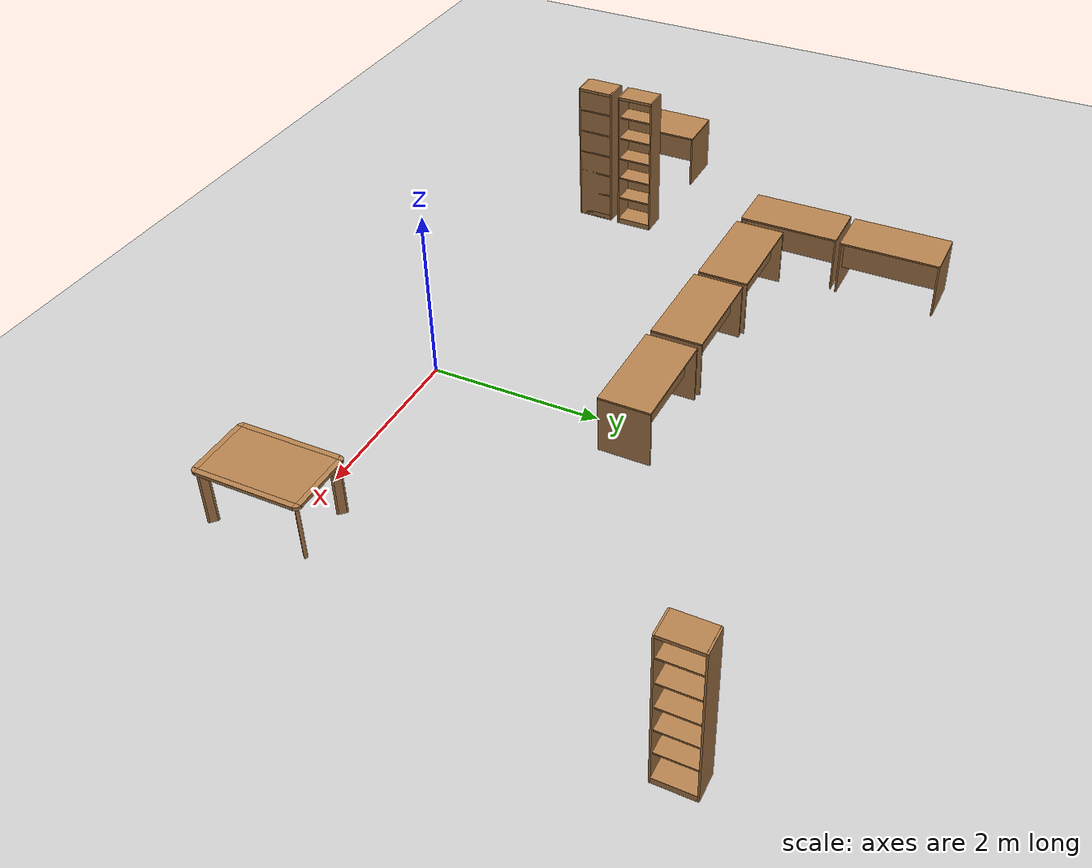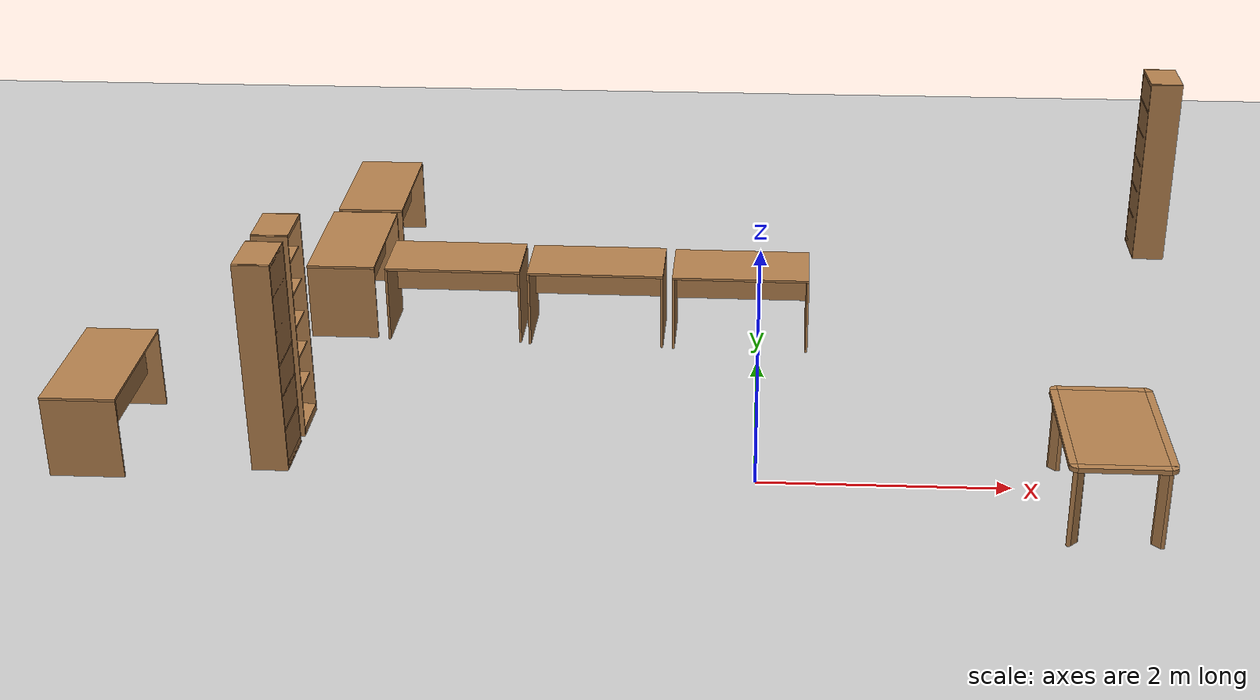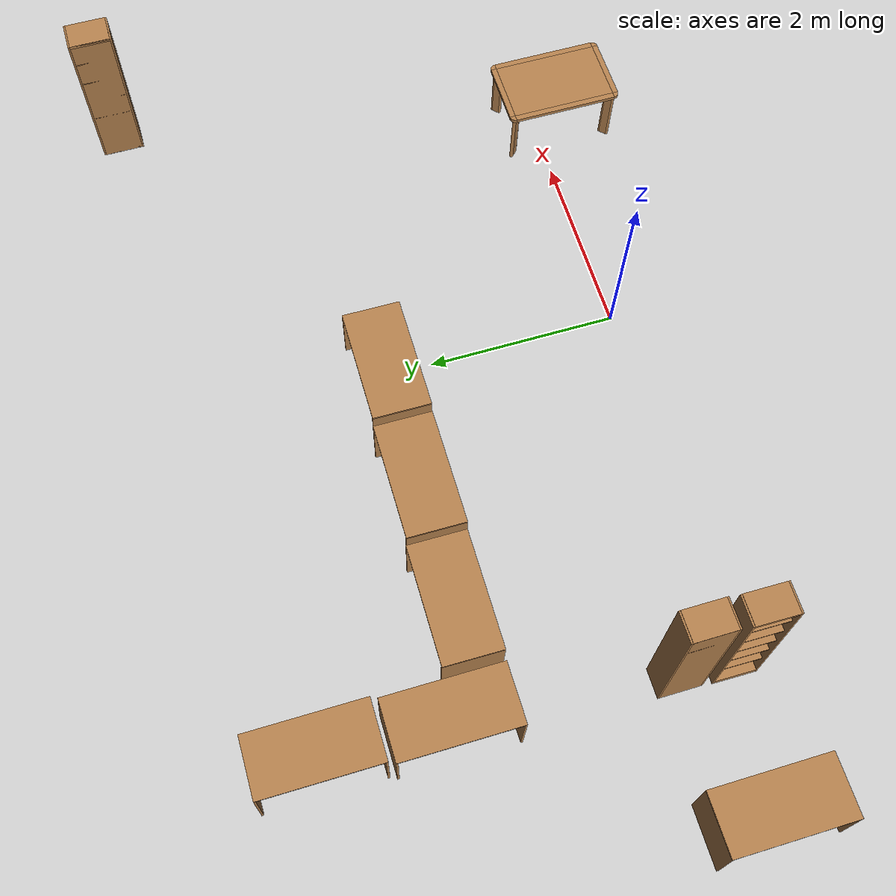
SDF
<sdf version="1.7">
 <world name="default">
  <model name="ground_plane">
   <static>1</static>
   <link name="link">
    <collision name="collision">
     <geometry><plane><normal>0 0 1</normal><size>100 100</size></plane></geometry>
     <surface><friction><ode><mu>100</mu><mu2>50</mu2></ode></friction></surface>
    </collision>
    <visual name="visual">
     <cast_shadows>0</cast_shadows>
     <geometry><plane><normal>0 0 1</normal><size>100 100</size></plane></geometry>
     <material>
      <script><uri>file://media/materials/scripts/gazebo.material</uri><name>Gazebo/Grey</name></script>
     </material>
    </visual>
   </link>
  </model>
  <model name="office_desk">
   <link name="link">
    <inertial>
     <mass>10</mass>
     <inertia><ixx>1</ixx><ixy>0</ixy><ixz>0</ixz><iyy>1</iyy><iyz>0</iyz><izz>1</izz></inertia>
    </inertial>
    <visual name="top_board">
     <pose>-0.3 0.6 0.69 0 -0 0</pose>
     <geometry><box><size>0.6 1.2 0.02</size></box></geometry>
     <material>
      <script>
       <uri>model://base_materials/wood/scripts/wood.material</uri>
       <name>base_materials/dark_wood</name>
      </script>
     </material>
    </visual>
    <collision name="collision_top_board">
     <pose>-0.3 0.6 0.69 0 -0 0</pose>
     <geometry><box><size>0.6 1.2 0.02</size></box></geometry>
    </collision>
    <visual name="left_board">
     <pose>-0.3 0.01 0.34 0 -0 0</pose>
     <geometry><box><size>0.6 0.02 0.68</size></box></geometry>
     <material>
      <script>
       <uri>model://base_materials/wood/scripts/wood.material</uri>
       <name>base_materials/dark_wood</name>
      </script>
     </material>
    </visual>
    <collision name="collision_left_board">
     <pose>-0.3 0.01 0.34 0 -0 0</pose>
     <geometry><box><size>0.6 0.02 0.68</size></box></geometry>
    </collision>
    <visual name="right_board">
     <pose>-0.3 1.19 0.34 0 -0 0</pose>
     <geometry><box><size>0.6 0.02 0.68</size></box></geometry>
     <material>
      <script>
       <uri>model://base_materials/wood/scripts/wood.material</uri>
       <name>base_materials/dark_wood</name>
      </script>
     </material>
    </visual>
    <collision name="collision_right_board">
     <pose>-0.3 1.19 0.34 0 -0 0</pose>
     <geometry><box><size>0.6 0.02 0.68</size></box></geometry>
    </collision>
    <visual name="center_board">
     <pose>-0.14 0.6 0.49 0 -0 0</pose>
     <geometry><box><size>0.02 1.16 0.4</size></box></geometry>
     <material>
      <script>
       <uri>model://base_materials/wood/scripts/wood.material</uri>
       <name>base_materials/dark_wood</name>
      </script>
     </material>
    </visual>
    <collision name="ollision_center_board">
     <pose>-0.14 0.6 0.49 0 -0 0</pose>
     <geometry><box><size>0.02 1.16 0.4</size></box></geometry>
    </collision>
    <velocity_decay><linear>0</linear><angular>0</angular></velocity_decay>
   </link>
   <static>1</static>
   <pose>-3.41065 2.31343 0 0 -0 0</pose>
  </model>
  <model name="office_desk_clone">
   <link name="link">
    <inertial>
     <mass>10</mass>
     <inertia><ixx>1</ixx><ixy>0</ixy><ixz>0</ixz><iyy>1</iyy><iyz>0</iyz><izz>1</izz></inertia>
    </inertial>
    <visual name="top_board">
     <pose>-0.3 0.6 0.69 0 -0 0</pose>
     <geometry><box><size>0.6 1.2 0.02</size></box></geometry>
     <material>
      <script>
       <uri>model://base_materials/wood/scripts/wood.material</uri>
       <name>base_materials/dark_wood</name>
      </script>
     </material>
    </visual>
    <collision name="collision_top_board">
     <pose>-0.3 0.6 0.69 0 -0 0</pose>
     <geometry><box><size>0.6 1.2 0.02</size></box></geometry>
    </collision>
    <visual name="left_board">
     <pose>-0.3 0.01 0.34 0 -0 0</pose>
     <geometry><box><size>0.6 0.02 0.68</size></box></geometry>
     <material>
      <script>
       <uri>model://base_materials/wood/scripts/wood.material</uri>
       <name>base_materials/dark_wood</name>
      </script>
     </material>
    </visual>
    <collision name="collision_left_board">
     <pose>-0.3 0.01 0.34 0 -0 0</pose>
     <geometry><box><size>0.6 0.02 0.68</size></box></geometry>
    </collision>
    <visual name="right_board">
     <pose>-0.3 1.19 0.34 0 -0 0</pose>
     <geometry><box><size>0.6 0.02 0.68</size></box></geometry>
     <material>
      <script>
       <uri>model://base_materials/wood/scripts/wood.material</uri>
       <name>base_materials/dark_wood</name>
      </script>
     </material>
    </visual>
    <collision name="collision_right_board">
     <pose>-0.3 1.19 0.34 0 -0 0</pose>
     <geometry><box><size>0.6 0.02 0.68</size></box></geometry>
    </collision>
    <visual name="center_board">
     <pose>-0.14 0.6 0.49 0 -0 0</pose>
     <geometry><box><size>0.02 1.16 0.4</size></box></geometry>
     <material>
      <script>
       <uri>model://base_materials/wood/scripts/wood.material</uri>
       <name>base_materials/dark_wood</name>
      </script>
     </material>
    </visual>
    <collision name="ollision_center_board">
     <pose>-0.14 0.6 0.49 0 -0 0</pose>
     <geometry><box><size>0.02 1.16 0.4</size></box></geometry>
    </collision>
    <velocity_decay><linear>0</linear><angular>0</angular></velocity_decay>
   </link>
   <static>1</static>
   <pose>-2.1081 2.88009 0 0 -0 1.56306</pose>
  </model>
  <model name="office_desk_clone_clone">
   <link name="link">
    <inertial>
     <mass>10</mass>
     <inertia><ixx>1</ixx><ixy>0</ixy><ixz>0</ixz><iyy>1</iyy><iyz>0</iyz><izz>1</izz></inertia>
    </inertial>
    <visual name="top_board">
     <pose>-0.3 0.6 0.69 0 -0 0</pose>
     <geometry><box><size>0.6 1.2 0.02</size></box></geometry>
     <material>
      <script>
       <uri>model://base_materials/wood/scripts/wood.material</uri>
       <name>base_materials/dark_wood</name>
      </script>
     </material>
    </visual>
    <collision name="collision_top_board">
     <pose>-0.3 0.6 0.69 0 -0 0</pose>
     <geometry><box><size>0.6 1.2 0.02</size></box></geometry>
    </collision>
    <visual name="left_board">
     <pose>-0.3 0.01 0.34 0 -0 0</pose>
     <geometry><box><size>0.6 0.02 0.68</size></box></geometry>
     <material>
      <script>
       <uri>model://base_materials/wood/scripts/wood.material</uri>
       <name>base_materials/dark_wood</name>
      </script>
     </material>
    </visual>
    <collision name="collision_left_board">
     <pose>-0.3 0.01 0.34 0 -0 0</pose>
     <geometry><box><size>0.6 0.02 0.68</size></box></geometry>
    </collision>
    <visual name="right_board">
     <pose>-0.3 1.19 0.34 0 -0 0</pose>
     <geometry><box><size>0.6 0.02 0.68</size></box></geometry>
     <material>
      <script>
       <uri>model://base_materials/wood/scripts/wood.material</uri>
       <name>base_materials/dark_wood</name>
      </script>
     </material>
    </visual>
    <collision name="collision_right_board">
     <pose>-0.3 1.19 0.34 0 -0 0</pose>
     <geometry><box><size>0.6 0.02 0.68</size></box></geometry>
    </collision>
    <visual name="center_board">
     <pose>-0.14 0.6 0.49 0 -0 0</pose>
     <geometry><box><size>0.02 1.16 0.4</size></box></geometry>
     <material>
      <script>
       <uri>model://base_materials/wood/scripts/wood.material</uri>
       <name>base_materials/dark_wood</name>
      </script>
     </material>
    </visual>
    <collision name="ollision_center_board">
     <pose>-0.14 0.6 0.49 0 -0 0</pose>
     <geometry><box><size>0.02 1.16 0.4</size></box></geometry>
    </collision>
    <velocity_decay><linear>0</linear><angular>0</angular></velocity_decay>
   </link>
   <static>1</static>
   <pose>-3.37655 3.57266 0 0 -0 0</pose>
  </model>
  <model name="office_desk_clone_clone_0">
   <link name="link">
    <inertial>
     <mass>10</mass>
     <inertia><ixx>1</ixx><ixy>0</ixy><ixz>0</ixz><iyy>1</iyy><iyz>0</iyz><izz>1</izz></inertia>
    </inertial>
    <visual name="top_board">
     <pose>-0.3 0.6 0.69 0 -0 0</pose>
     <geometry><box><size>0.6 1.2 0.02</size></box></geometry>
     <material>
      <script>
       <uri>model://base_materials/wood/scripts/wood.material</uri>
       <name>base_materials/dark_wood</name>
      </script>
     </material>
    </visual>
    <collision name="collision_top_board">
     <pose>-0.3 0.6 0.69 0 -0 0</pose>
     <geometry><box><size>0.6 1.2 0.02</size></box></geometry>
    </collision>
    <visual name="left_board">
     <pose>-0.3 0.01 0.34 0 -0 0</pose>
     <geometry><box><size>0.6 0.02 0.68</size></box></geometry>
     <material>
      <script>
       <uri>model://base_materials/wood/scripts/wood.material</uri>
       <name>base_materials/dark_wood</name>
      </script>
     </material>
    </visual>
    <collision name="collision_left_board">
     <pose>-0.3 0.01 0.34 0 -0 0</pose>
     <geometry><box><size>0.6 0.02 0.68</size></box></geometry>
    </collision>
    <visual name="right_board">
     <pose>-0.3 1.19 0.34 0 -0 0</pose>
     <geometry><box><size>0.6 0.02 0.68</size></box></geometry>
     <material>
      <script>
       <uri>model://base_materials/wood/scripts/wood.material</uri>
       <name>base_materials/dark_wood</name>
      </script>
     </material>
    </visual>
    <collision name="collision_right_board">
     <pose>-0.3 1.19 0.34 0 -0 0</pose>
     <geometry><box><size>0.6 0.02 0.68</size></box></geometry>
    </collision>
    <visual name="center_board">
     <pose>-0.14 0.6 0.49 0 -0 0</pose>
     <geometry><box><size>0.02 1.16 0.4</size></box></geometry>
     <material>
      <script>
       <uri>model://base_materials/wood/scripts/wood.material</uri>
       <name>base_materials/dark_wood</name>
      </script>
     </material>
    </visual>
    <collision name="ollision_center_board">
     <pose>-0.14 0.6 0.49 0 -0 0</pose>
     <geometry><box><size>0.02 1.16 0.4</size></box></geometry>
    </collision>
    <velocity_decay><linear>0</linear><angular>0</angular></velocity_decay>
   </link>
   <static>1</static>
   <pose>-0.839795 2.84629 0 0 -0 1.56306</pose>
  </model>
  <model name="office_desk_clone_clone_1">
   <link name="link">
    <inertial>
     <mass>10</mass>
     <inertia><ixx>1</ixx><ixy>0</ixy><ixz>0</ixz><iyy>1</iyy><iyz>0</iyz><izz>1</izz></inertia>
    </inertial>
    <visual name="top_board">
     <pose>-0.3 0.6 0.69 0 -0 0</pose>
     <geometry><box><size>0.6 1.2 0.02</size></box></geometry>
     <material>
      <script>
       <uri>model://base_materials/wood/scripts/wood.material</uri>
       <name>base_materials/dark_wood</name>
      </script>
     </material>
    </visual>
    <collision name="collision_top_board">
     <pose>-0.3 0.6 0.69 0 -0 0</pose>
     <geometry><box><size>0.6 1.2 0.02</size></box></geometry>
    </collision>
    <visual name="left_board">
     <pose>-0.3 0.01 0.34 0 -0 0</pose>
     <geometry><box><size>0.6 0.02 0.68</size></box></geometry>
     <material>
      <script>
       <uri>model://base_materials/wood/scripts/wood.material</uri>
       <name>base_materials/dark_wood</name>
      </script>
     </material>
    </visual>
    <collision name="collision_left_board">
     <pose>-0.3 0.01 0.34 0 -0 0</pose>
     <geometry><box><size>0.6 0.02 0.68</size></box></geometry>
    </collision>
    <visual name="right_board">
     <pose>-0.3 1.19 0.34 0 -0 0</pose>
     <geometry><box><size>0.6 0.02 0.68</size></box></geometry>
     <material>
      <script>
       <uri>model://base_materials/wood/scripts/wood.material</uri>
       <name>base_materials/dark_wood</name>
      </script>
     </material>
    </visual>
    <collision name="collision_right_board">
     <pose>-0.3 1.19 0.34 0 -0 0</pose>
     <geometry><box><size>0.6 0.02 0.68</size></box></geometry>
    </collision>
    <visual name="center_board">
     <pose>-0.14 0.6 0.49 0 -0 0</pose>
     <geometry><box><size>0.02 1.16 0.4</size></box></geometry>
     <material>
      <script>
       <uri>model://base_materials/wood/scripts/wood.material</uri>
       <name>base_materials/dark_wood</name>
      </script>
     </material>
    </visual>
    <collision name="ollision_center_board">
     <pose>-0.14 0.6 0.49 0 -0 0</pose>
     <geometry><box><size>0.02 1.16 0.4</size></box></geometry>
    </collision>
    <velocity_decay><linear>0</linear><angular>0</angular></velocity_decay>
   </link>
   <static>1</static>
   <pose>0.443376 2.81777 0 0 -0 1.56306</pose>
  </model>
  <model name="office_desk_clone_0">
   <link name="link">
    <inertial>
     <mass>10</mass>
     <inertia><ixx>1</ixx><ixy>0</ixy><ixz>0</ixz><iyy>1</iyy><iyz>0</iyz><izz>1</izz></inertia>
    </inertial>
    <visual name="top_board">
     <pose>-0.3 0.6 0.69 0 -0 0</pose>
     <geometry><box><size>0.6 1.2 0.02</size></box></geometry>
     <material>
      <script>
       <uri>model://base_materials/wood/scripts/wood.material</uri>
       <name>base_materials/dark_wood</name>
      </script>
     </material>
    </visual>
    <collision name="collision_top_board">
     <pose>-0.3 0.6 0.69 0 -0 0</pose>
     <geometry><box><size>0.6 1.2 0.02</size></box></geometry>
    </collision>
    <visual name="left_board">
     <pose>-0.3 0.01 0.34 0 -0 0</pose>
     <geometry><box><size>0.6 0.02 0.68</size></box></geometry>
     <material>
      <script>
       <uri>model://base_materials/wood/scripts/wood.material</uri>
       <name>base_materials/dark_wood</name>
      </script>
     </material>
    </visual>
    <collision name="collision_left_board">
     <pose>-0.3 0.01 0.34 0 -0 0</pose>
     <geometry><box><size>0.6 0.02 0.68</size></box></geometry>
    </collision>
    <visual name="right_board">
     <pose>-0.3 1.19 0.34 0 -0 0</pose>
     <geometry><box><size>0.6 0.02 0.68</size></box></geometry>
     <material>
      <script>
       <uri>model://base_materials/wood/scripts/wood.material</uri>
       <name>base_materials/dark_wood</name>
      </script>
     </material>
    </visual>
    <collision name="collision_right_board">
     <pose>-0.3 1.19 0.34 0 -0 0</pose>
     <geometry><box><size>0.6 0.02 0.68</size></box></geometry>
    </collision>
    <visual name="center_board">
     <pose>-0.14 0.6 0.49 0 -0 0</pose>
     <geometry><box><size>0.02 1.16 0.4</size></box></geometry>
     <material>
      <script>
       <uri>model://base_materials/wood/scripts/wood.material</uri>
       <name>base_materials/dark_wood</name>
      </script>
     </material>
    </visual>
    <collision name="ollision_center_board">
     <pose>-0.14 0.6 0.49 0 -0 0</pose>
     <geometry><box><size>0.02 1.16 0.4</size></box></geometry>
    </collision>
    <velocity_decay><linear>0</linear><angular>0</angular></velocity_decay>
   </link>
   <static>1</static>
   <pose>-4.97445 -0.175637 0 0 -0 0</pose>
  </model>
  <model name="high_shelf">
   <link name="link">
    <inertial>
     <mass>5</mass>
     <inertia><ixx>1</ixx><ixy>0</ixy><ixz>0</ixz><iyy>1</iyy><iyz>0</iyz><izz>1</izz></inertia>
    </inertial>
    <visual name="left_board">
     <pose>-0.1475 0.009 0.898 0 -0 0</pose>
     <geometry><box><size>0.295 0.018 1.796</size></box></geometry>
     <material>
      <script>
       <uri>model://base_materials/wood/scripts</uri>
       <uri>model://base_materials/wood/textures</uri>
       <name>base_materials/light_wood</name>
      </script>
     </material>
    </visual>
    <collision name="collision_left_board">
     <pose>-0.1475 0.009 0.898 0 -0 0</pose>
     <geometry><box><size>0.295 0.018 1.796</size></box></geometry>
    </collision>
    <visual name="right_board">
     <pose>-0.1475 0.441 0.898 0 -0 0</pose>
     <geometry><box><size>0.295 0.018 1.796</size></box></geometry>
     <material>
      <script>
       <uri>model://base_materials/wood/scripts</uri>
       <uri>model://base_materials/wood/textures</uri>
       <name>base_materials/light_wood</name>
      </script>
     </material>
    </visual>
    <collision name="collision_right_board">
     <pose>-0.1475 0.441 0.898 0 -0 0</pose>
     <geometry><box><size>0.295 0.018 1.796</size></box></geometry>
    </collision>
    <visual name="top_board">
     <pose>-0.1475 0.225 1.7825 0 -0 0</pose>
     <geometry><box><size>0.295 0.414 0.035</size></box></geometry>
     <material>
      <script>
       <uri>model://base_materials/wood/scripts</uri>
       <uri>model://base_materials/wood/textures</uri>
       <name>base_materials/light_wood</name>
      </script>
     </material>
    </visual>
    <collision name="collision_top_board">
     <pose>-0.1475 0.225 1.7825 0 -0 0</pose>
     <geometry><box><size>0.295 0.414 0.035</size></box></geometry>
    </collision>
    <visual name="1st_shelf">
     <pose>-0.162 0.225 1.51 0 -0 0</pose>
     <geometry><box><size>0.266 0.414 0.018</size></box></geometry>
     <material>
      <script>
       <uri>model://base_materials/wood/scripts</uri>
       <uri>model://base_materials/wood/textures</uri>
       <name>base_materials/light_wood</name>
      </script>
     </material>
    </visual>
    <collision name="collision_1st_shelf">
     <pose>-0.162 0.225 1.51 0 -0 0</pose>
     <geometry><box><size>0.266 0.414 0.018</size></box></geometry>
    </collision>
    <visual name="2nd_shelf">
     <pose>-0.162 0.225 1.22 0 -0 0</pose>
     <geometry><box><size>0.266 0.414 0.018</size></box></geometry>
     <material>
      <script>
       <uri>model://base_materials/wood/scripts</uri>
       <uri>model://base_materials/wood/textures</uri>
       <name>base_materials/light_wood</name>
      </script>
     </material>
    </visual>
    <collision name="collision_2nd_shelf">
     <pose>-0.162 0.225 1.22 0 -0 0</pose>
     <geometry><box><size>0.266 0.414 0.018</size></box></geometry>
    </collision>
    <visual name="3rd_shelf">
     <pose>-0.162 0.225 0.93 0 -0 0</pose>
     <geometry><box><size>0.266 0.414 0.018</size></box></geometry>
     <material>
      <script>
       <uri>model://base_materials/wood/scripts</uri>
       <uri>model://base_materials/wood/textures</uri>
       <name>base_materials/light_wood</name>
      </script>
     </material>
    </visual>
    <collision name="collision_3rd_shelf">
     <pose>-0.162 0.225 0.93 0 -0 0</pose>
     <geometry><box><size>0.266 0.414 0.018</size></box></geometry>
    </collision>
    <visual name="4th_shelf">
     <pose>-0.162 0.225 0.65 0 -0 0</pose>
     <geometry><box><size>0.266 0.414 0.018</size></box></geometry>
     <material>
      <script>
       <uri>model://base_materials/wood/scripts</uri>
       <uri>model://base_materials/wood/textures</uri>
       <name>base_materials/light_wood</name>
      </script>
     </material>
    </visual>
    <collision name="collision_4th_shelf">
     <pose>-0.162 0.225 0.65 0 -0 0</pose>
     <geometry><box><size>0.266 0.414 0.018</size></box></geometry>
    </collision>
    <visual name="5th_shelf">
     <pose>-0.162 0.225 0.36 0 -0 0</pose>
     <geometry><box><size>0.266 0.414 0.018</size></box></geometry>
     <material>
      <script>
       <uri>model://base_materials/wood/scripts</uri>
       <uri>model://base_materials/wood/textures</uri>
       <name>base_materials/light_wood</name>
      </script>
     </material>
    </visual>
    <collision name="collision_5th_shelf">
     <pose>-0.162 0.225 0.36 0 -0 0</pose>
     <geometry><box><size>0.266 0.414 0.018</size></box></geometry>
    </collision>
    <visual name="bottom_board">
     <pose>-0.1475 0.225 0.035 0 -0 0</pose>
     <geometry><box><size>0.295 0.414 0.07</size></box></geometry>
     <material>
      <script>
       <uri>model://base_materials/wood/scripts</uri>
       <uri>model://base_materials/wood/textures</uri>
       <name>base_materials/light_wood</name>
      </script>
     </material>
    </visual>
    <collision name="collision_bottom_board">
     <pose>-0.1475 0.225 0.035 0 -0 0</pose>
     <geometry><box><size>0.295 0.414 0.07</size></box></geometry>
    </collision>
    <visual name="back_board">
     <pose>-0.286 0.225 0.898 0 -0 0</pose>
     <geometry><box><size>0.018 0.414 1.796</size></box></geometry>
     <material>
      <script>
       <uri>model://base_materials/wood/scripts</uri>
       <uri>model://base_materials/wood/textures</uri>
       <name>base_materials/light_wood</name>
      </script>
     </material>
    </visual>
    <collision name="collision_back_board">
     <pose>-0.286 0.225 0.898 0 -0 0</pose>
     <geometry><box><size>0.018 0.414 1.796</size></box></geometry>
    </collision>
    <velocity_decay><linear>0</linear><angular>0</angular></velocity_decay>
   </link>
   <static>1</static>
   <pose>-3.68843 0.528349 0 0 -0 0</pose>
  </model>
  <model name="high_shelf_clone">
   <link name="link">
    <inertial>
     <mass>5</mass>
     <inertia><ixx>1</ixx><ixy>0</ixy><ixz>0</ixz><iyy>1</iyy><iyz>0</iyz><izz>1</izz></inertia>
    </inertial>
    <visual name="left_board">
     <pose>-0.1475 0.009 0.898 0 -0 0</pose>
     <geometry><box><size>0.295 0.018 1.796</size></box></geometry>
     <material>
      <script>
       <uri>model://base_materials/wood/scripts</uri>
       <uri>model://base_materials/wood/textures</uri>
       <name>base_materials/light_wood</name>
      </script>
     </material>
    </visual>
    <collision name="collision_left_board">
     <pose>-0.1475 0.009 0.898 0 -0 0</pose>
     <geometry><box><size>0.295 0.018 1.796</size></box></geometry>
    </collision>
    <visual name="right_board">
     <pose>-0.1475 0.441 0.898 0 -0 0</pose>
     <geometry><box><size>0.295 0.018 1.796</size></box></geometry>
     <material>
      <script>
       <uri>model://base_materials/wood/scripts</uri>
       <uri>model://base_materials/wood/textures</uri>
       <name>base_materials/light_wood</name>
      </script>
     </material>
    </visual>
    <collision name="collision_right_board">
     <pose>-0.1475 0.441 0.898 0 -0 0</pose>
     <geometry><box><size>0.295 0.018 1.796</size></box></geometry>
    </collision>
    <visual name="top_board">
     <pose>-0.1475 0.225 1.7825 0 -0 0</pose>
     <geometry><box><size>0.295 0.414 0.035</size></box></geometry>
     <material>
      <script>
       <uri>model://base_materials/wood/scripts</uri>
       <uri>model://base_materials/wood/textures</uri>
       <name>base_materials/light_wood</name>
      </script>
     </material>
    </visual>
    <collision name="collision_top_board">
     <pose>-0.1475 0.225 1.7825 0 -0 0</pose>
     <geometry><box><size>0.295 0.414 0.035</size></box></geometry>
    </collision>
    <visual name="1st_shelf">
     <pose>-0.162 0.225 1.51 0 -0 0</pose>
     <geometry><box><size>0.266 0.414 0.018</size></box></geometry>
     <material>
      <script>
       <uri>model://base_materials/wood/scripts</uri>
       <uri>model://base_materials/wood/textures</uri>
       <name>base_materials/light_wood</name>
      </script>
     </material>
    </visual>
    <collision name="collision_1st_shelf">
     <pose>-0.162 0.225 1.51 0 -0 0</pose>
     <geometry><box><size>0.266 0.414 0.018</size></box></geometry>
    </collision>
    <visual name="2nd_shelf">
     <pose>-0.162 0.225 1.22 0 -0 0</pose>
     <geometry><box><size>0.266 0.414 0.018</size></box></geometry>
     <material>
      <script>
       <uri>model://base_materials/wood/scripts</uri>
       <uri>model://base_materials/wood/textures</uri>
       <name>base_materials/light_wood</name>
      </script>
     </material>
    </visual>
    <collision name="collision_2nd_shelf">
     <pose>-0.162 0.225 1.22 0 -0 0</pose>
     <geometry><box><size>0.266 0.414 0.018</size></box></geometry>
    </collision>
    <visual name="3rd_shelf">
     <pose>-0.162 0.225 0.93 0 -0 0</pose>
     <geometry><box><size>0.266 0.414 0.018</size></box></geometry>
     <material>
      <script>
       <uri>model://base_materials/wood/scripts</uri>
       <uri>model://base_materials/wood/textures</uri>
       <name>base_materials/light_wood</name>
      </script>
     </material>
    </visual>
    <collision name="collision_3rd_shelf">
     <pose>-0.162 0.225 0.93 0 -0 0</pose>
     <geometry><box><size>0.266 0.414 0.018</size></box></geometry>
    </collision>
    <visual name="4th_shelf">
     <pose>-0.162 0.225 0.65 0 -0 0</pose>
     <geometry><box><size>0.266 0.414 0.018</size></box></geometry>
     <material>
      <script>
       <uri>model://base_materials/wood/scripts</uri>
       <uri>model://base_materials/wood/textures</uri>
       <name>base_materials/light_wood</name>
      </script>
     </material>
    </visual>
    <collision name="collision_4th_shelf">
     <pose>-0.162 0.225 0.65 0 -0 0</pose>
     <geometry><box><size>0.266 0.414 0.018</size></box></geometry>
    </collision>
    <visual name="5th_shelf">
     <pose>-0.162 0.225 0.36 0 -0 0</pose>
     <geometry><box><size>0.266 0.414 0.018</size></box></geometry>
     <material>
      <script>
       <uri>model://base_materials/wood/scripts</uri>
       <uri>model://base_materials/wood/textures</uri>
       <name>base_materials/light_wood</name>
      </script>
     </material>
    </visual>
    <collision name="collision_5th_shelf">
     <pose>-0.162 0.225 0.36 0 -0 0</pose>
     <geometry><box><size>0.266 0.414 0.018</size></box></geometry>
    </collision>
    <visual name="bottom_board">
     <pose>-0.1475 0.225 0.035 0 -0 0</pose>
     <geometry><box><size>0.295 0.414 0.07</size></box></geometry>
     <material>
      <script>
       <uri>model://base_materials/wood/scripts</uri>
       <uri>model://base_materials/wood/textures</uri>
       <name>base_materials/light_wood</name>
      </script>
     </material>
    </visual>
    <collision name="collision_bottom_board">
     <pose>-0.1475 0.225 0.035 0 -0 0</pose>
     <geometry><box><size>0.295 0.414 0.07</size></box></geometry>
    </collision>
    <visual name="back_board">
     <pose>-0.286 0.225 0.898 0 -0 0</pose>
     <geometry><box><size>0.018 0.414 1.796</size></box></geometry>
     <material>
      <script>
       <uri>model://base_materials/wood/scripts</uri>
       <uri>model://base_materials/wood/textures</uri>
       <name>base_materials/light_wood</name>
      </script>
     </material>
    </visual>
    <collision name="collision_back_board">
     <pose>-0.286 0.225 0.898 0 -0 0</pose>
     <geometry><box><size>0.018 0.414 1.796</size></box></geometry>
    </collision>
    <velocity_decay><linear>0</linear><angular>0</angular></velocity_decay>
   </link>
   <static>1</static>
   <pose>-3.99579 0.437995 0 0 -0 3.13126</pose>
  </model>
  <model name="high_shelf_clone_clone_0">
   <link name="link">
    <inertial>
     <mass>5</mass>
     <inertia><ixx>1</ixx><ixy>0</ixy><ixz>0</ixz><iyy>1</iyy><iyz>0</iyz><izz>1</izz></inertia>
    </inertial>
    <visual name="left_board">
     <pose>-0.1475 0.009 0.898 0 -0 0</pose>
     <geometry><box><size>0.295 0.018 1.796</size></box></geometry>
     <material>
      <script>
       <uri>model://base_materials/wood/scripts</uri>
       <uri>model://base_materials/wood/textures</uri>
       <name>base_materials/light_wood</name>
      </script>
     </material>
    </visual>
    <collision name="collision_left_board">
     <pose>-0.1475 0.009 0.898 0 -0 0</pose>
     <geometry><box><size>0.295 0.018 1.796</size></box></geometry>
    </collision>
    <visual name="right_board">
     <pose>-0.1475 0.441 0.898 0 -0 0</pose>
     <geometry><box><size>0.295 0.018 1.796</size></box></geometry>
     <material>
      <script>
       <uri>model://base_materials/wood/scripts</uri>
       <uri>model://base_materials/wood/textures</uri>
       <name>base_materials/light_wood</name>
      </script>
     </material>
    </visual>
    <collision name="collision_right_board">
     <pose>-0.1475 0.441 0.898 0 -0 0</pose>
     <geometry><box><size>0.295 0.018 1.796</size></box></geometry>
    </collision>
    <visual name="top_board">
     <pose>-0.1475 0.225 1.7825 0 -0 0</pose>
     <geometry><box><size>0.295 0.414 0.035</size></box></geometry>
     <material>
      <script>
       <uri>model://base_materials/wood/scripts</uri>
       <uri>model://base_materials/wood/textures</uri>
       <name>base_materials/light_wood</name>
      </script>
     </material>
    </visual>
    <collision name="collision_top_board">
     <pose>-0.1475 0.225 1.7825 0 -0 0</pose>
     <geometry><box><size>0.295 0.414 0.035</size></box></geometry>
    </collision>
    <visual name="1st_shelf">
     <pose>-0.162 0.225 1.51 0 -0 0</pose>
     <geometry><box><size>0.266 0.414 0.018</size></box></geometry>
     <material>
      <script>
       <uri>model://base_materials/wood/scripts</uri>
       <uri>model://base_materials/wood/textures</uri>
       <name>base_materials/light_wood</name>
      </script>
     </material>
    </visual>
    <collision name="collision_1st_shelf">
     <pose>-0.162 0.225 1.51 0 -0 0</pose>
     <geometry><box><size>0.266 0.414 0.018</size></box></geometry>
    </collision>
    <visual name="2nd_shelf">
     <pose>-0.162 0.225 1.22 0 -0 0</pose>
     <geometry><box><size>0.266 0.414 0.018</size></box></geometry>
     <material>
      <script>
       <uri>model://base_materials/wood/scripts</uri>
       <uri>model://base_materials/wood/textures</uri>
       <name>base_materials/light_wood</name>
      </script>
     </material>
    </visual>
    <collision name="collision_2nd_shelf">
     <pose>-0.162 0.225 1.22 0 -0 0</pose>
     <geometry><box><size>0.266 0.414 0.018</size></box></geometry>
    </collision>
    <visual name="3rd_shelf">
     <pose>-0.162 0.225 0.93 0 -0 0</pose>
     <geometry><box><size>0.266 0.414 0.018</size></box></geometry>
     <material>
      <script>
       <uri>model://base_materials/wood/scripts</uri>
       <uri>model://base_materials/wood/textures</uri>
       <name>base_materials/light_wood</name>
      </script>
     </material>
    </visual>
    <collision name="collision_3rd_shelf">
     <pose>-0.162 0.225 0.93 0 -0 0</pose>
     <geometry><box><size>0.266 0.414 0.018</size></box></geometry>
    </collision>
    <visual name="4th_shelf">
     <pose>-0.162 0.225 0.65 0 -0 0</pose>
     <geometry><box><size>0.266 0.414 0.018</size></box></geometry>
     <material>
      <script>
       <uri>model://base_materials/wood/scripts</uri>
       <uri>model://base_materials/wood/textures</uri>
       <name>base_materials/light_wood</name>
      </script>
     </material>
    </visual>
    <collision name="collision_4th_shelf">
     <pose>-0.162 0.225 0.65 0 -0 0</pose>
     <geometry><box><size>0.266 0.414 0.018</size></box></geometry>
    </collision>
    <visual name="5th_shelf">
     <pose>-0.162 0.225 0.36 0 -0 0</pose>
     <geometry><box><size>0.266 0.414 0.018</size></box></geometry>
     <material>
      <script>
       <uri>model://base_materials/wood/scripts</uri>
       <uri>model://base_materials/wood/textures</uri>
       <name>base_materials/light_wood</name>
      </script>
     </material>
    </visual>
    <collision name="collision_5th_shelf">
     <pose>-0.162 0.225 0.36 0 -0 0</pose>
     <geometry><box><size>0.266 0.414 0.018</size></box></geometry>
    </collision>
    <visual name="bottom_board">
     <pose>-0.1475 0.225 0.035 0 -0 0</pose>
     <geometry><box><size>0.295 0.414 0.07</size></box></geometry>
     <material>
      <script>
       <uri>model://base_materials/wood/scripts</uri>
       <uri>model://base_materials/wood/textures</uri>
       <name>base_materials/light_wood</name>
      </script>
     </material>
    </visual>
    <collision name="collision_bottom_board">
     <pose>-0.1475 0.225 0.035 0 -0 0</pose>
     <geometry><box><size>0.295 0.414 0.07</size></box></geometry>
    </collision>
    <visual name="back_board">
     <pose>-0.286 0.225 0.898 0 -0 0</pose>
     <geometry><box><size>0.018 0.414 1.796</size></box></geometry>
     <material>
      <script>
       <uri>model://base_materials/wood/scripts</uri>
       <uri>model://base_materials/wood/textures</uri>
       <name>base_materials/light_wood</name>
      </script>
     </material>
    </visual>
    <collision name="collision_back_board">
     <pose>-0.286 0.225 0.898 0 -0 0</pose>
     <geometry><box><size>0.018 0.414 1.796</size></box></geometry>
    </collision>
    <velocity_decay><linear>0</linear><angular>0</angular></velocity_decay>
   </link>
   <static>1</static>
   <pose>3.93939 4.34929 0 0 0 -0.003603</pose>
  </model>
  <model name="kitchen_table">
   <link name="link">
    <inertial>
     <mass>10</mass>
     <inertia><ixx>1</ixx><ixy>0</ixy><ixz>0</ixz><iyy>1</iyy><iyz>0</iyz><izz>1</izz></inertia>
    </inertial>
    <visual name="center_board">
     <pose>0 0 0.68 0 -0 0</pose>
     <geometry><box><size>0.68 1.13 0.04</size></box></geometry>
     <material>
      <script><uri>model://base_materials/wood/scripts/wood.material</uri><name>base_materials/wood</name></script>
     </material>
    </visual>
    <collision name="collision_center_board">
     <pose>0 0 0.68 0 -0 0</pose>
     <geometry><box><size>0.68 1.13 0.04</size></box></geometry>
    </collision>
    <visual name="front_board">
     <pose>0.37 0 0.68 0 -0 0</pose>
     <geometry><box><size>0.06 1.13 0.04</size></box></geometry>
     <material>
      <script><uri>model://base_materials/wood/scripts/wood.material</uri><name>base_materials/wood</name></script>
     </material>
    </visual>
    <collision name="collision_front_board">
     <pose>0.37 0 0.68 0 -0 0</pose>
     <geometry><box><size>0.06 1.13 0.04</size></box></geometry>
    </collision>
    <visual name="back_board">
     <pose>-0.37 0 0.68 0 -0 0</pose>
     <geometry><box><size>0.06 1.13 0.04</size></box></geometry>
     <material>
      <script><uri>model://base_materials/wood/scripts/wood.material</uri><name>base_materials/wood</name></script>
     </material>
    </visual>
    <collision name="collision_back_board">
     <pose>-0.37 0 0.68 0 -0 0</pose>
     <geometry><box><size>0.06 1.13 0.04</size></box></geometry>
    </collision>
    <visual name="right_board">
     <pose>0 0.595 0.68 0 -0 0</pose>
     <geometry><box><size>0.68 0.06 0.04</size></box></geometry>
     <material>
      <script><uri>model://base_materials/wood/scripts/wood.material</uri><name>base_materials/wood</name></script>
     </material>
    </visual>
    <collision name="collision_right_board">
     <pose>0 0.595 0.68 0 -0 0</pose>
     <geometry><box><size>0.68 0.06 0.04</size></box></geometry>
    </collision>
    <visual name="left_board">
     <pose>0 -0.595 0.68 0 -0 0</pose>
     <geometry><box><size>0.68 0.06 0.04</size></box></geometry>
     <material>
      <script><uri>model://base_materials/wood/scripts/wood.material</uri><name>base_materials/wood</name></script>
     </material>
    </visual>
    <collision name="collision_left_board">
     <pose>0 -0.595 0.68 0 -0 0</pose>
     <geometry><box><size>0.68 0.06 0.04</size></box></geometry>
    </collision>
    <visual name="front_right_corner_board">
     <pose>0.34 0.565 0.68 0 -0 0</pose>
     <geometry><cylinder><radius>0.06</radius><length>0.039</length></cylinder></geometry>
     <material>
      <script><uri>model://base_materials/wood/scripts/wood.material</uri><name>base_materials/wood</name></script>
     </material>
    </visual>
    <collision name="collision_front_right_corner_board">
     <pose>0.34 0.565 0.68 0 -0 0</pose>
     <geometry><cylinder><radius>0.06</radius><length>0.039</length></cylinder></geometry>
    </collision>
    <visual name="front_left_corner_board">
     <pose>0.34 -0.565 0.68 0 -0 0</pose>
     <geometry><cylinder><radius>0.06</radius><length>0.039</length></cylinder></geometry>
     <material>
      <script><uri>model://base_materials/wood/scripts/wood.material</uri><name>base_materials/wood</name></script>
     </material>
    </visual>
    <collision name="collision_front_left_corner_board">
     <pose>0.34 -0.565 0.68 0 -0 0</pose>
     <geometry><cylinder><radius>0.06</radius><length>0.039</length></cylinder></geometry>
    </collision>
    <visual name="front_back_right_corner_board">
     <pose>-0.34 0.565 0.68 0 -0 0</pose>
     <geometry><cylinder><radius>0.06</radius><length>0.039</length></cylinder></geometry>
     <material>
      <script><uri>model://base_materials/wood/scripts/wood.material</uri><name>base_materials/wood</name></script>
     </material>
    </visual>
    <collision name="collision_back_right_corner_board">
     <pose>-0.34 0.565 0.68 0 -0 0</pose>
     <geometry><cylinder><radius>0.06</radius><length>0.039</length></cylinder></geometry>
    </collision>
    <visual name="front_back_left_corner_board">
     <pose>-0.34 -0.565 0.68 0 -0 0</pose>
     <geometry><cylinder><radius>0.06</radius><length>0.039</length></cylinder></geometry>
     <material>
      <script><uri>model://base_materials/wood/scripts/wood.material</uri><name>base_materials/wood</name></script>
     </material>
    </visual>
    <collision name="collision_back_left_corner_board">
     <pose>-0.34 -0.565 0.68 0 -0 0</pose>
     <geometry><cylinder><radius>0.06</radius><length>0.039</length></cylinder></geometry>
    </collision>
    <visual name="front_left_corner_frame1">
     <pose>0.345858 -0.57086 0.33 0 -0 0</pose>
     <geometry><cylinder><radius>0.02</radius><length>0.66</length></cylinder></geometry>
     <material>
      <script><uri>model://base_materials/wood/scripts/wood.material</uri><name>base_materials/wood</name></script>
     </material>
    </visual>
    <collision name="collision_front_left_corner_frame1">
     <pose>0.345858 -0.57086 0.33 0 -0 0</pose>
     <geometry><cylinder><radius>0.02</radius><length>0.66</length></cylinder></geometry>
    </collision>
    <visual name="front_left_corner_frame2">
     <pose>0.317574 -0.54257 0.33 0 -0 0.7854</pose>
     <geometry><box><size>0.04 0.08 0.66</size></box></geometry>
     <material>
      <script><uri>model://base_materials/wood/scripts/wood.material</uri><name>base_materials/wood</name></script>
     </material>
    </visual>
    <collision name="collision_front_left_corner_frame2">
     <pose>0.317574 -0.54257 0.33 0 -0 0.7854</pose>
     <geometry><box><size>0.04 0.08 0.66</size></box></geometry>
    </collision>
    <visual name="front_left_corner_frame3">
     <pose>0.289289 -0.51429 0.33 0 -0 0</pose>
     <geometry><cylinder><radius>0.02</radius><length>0.66</length></cylinder></geometry>
     <material>
      <script><uri>model://base_materials/wood/scripts/wood.material</uri><name>base_materials/wood</name></script>
     </material>
    </visual>
    <collision name="collision_front_left_corner_frame3">
     <pose>0.289289 -0.51429 0.33 0 -0 0</pose>
     <geometry><cylinder><radius>0.02</radius><length>0.66</length></cylinder></geometry>
    </collision>
    <visual name="front_right_corner_frame1">
     <pose>0.345858 0.57086 0.33 0 -0 0</pose>
     <geometry><cylinder><radius>0.02</radius><length>0.66</length></cylinder></geometry>
     <material>
      <script><uri>model://base_materials/wood/scripts/wood.material</uri><name>base_materials/wood</name></script>
     </material>
    </visual>
    <collision name="collision_front_right_corner_frame1">
     <pose>0.345858 0.57086 0.33 0 -0 0</pose>
     <geometry><cylinder><radius>0.02</radius><length>0.66</length></cylinder></geometry>
    </collision>
    <visual name="front_right_corner_frame2">
     <pose>0.317574 0.54257 0.33 0 0 -0.7854</pose>
     <geometry><box><size>0.04 0.08 0.66</size></box></geometry>
     <material>
      <script><uri>model://base_materials/wood/scripts/wood.material</uri><name>base_materials/wood</name></script>
     </material>
    </visual>
    <collision name="collision_front_right_corner_frame2">
     <pose>0.317574 0.54257 0.33 0 0 -0.7854</pose>
     <geometry><box><size>0.04 0.08 0.66</size></box></geometry>
    </collision>
    <visual name="front_right_corner_frame3">
     <pose>0.289289 0.51429 0.33 0 -0 0</pose>
     <geometry><cylinder><radius>0.02</radius><length>0.66</length></cylinder></geometry>
     <material>
      <script><uri>model://base_materials/wood/scripts/wood.material</uri><name>base_materials/wood</name></script>
     </material>
    </visual>
    <collision name="collision_front_right_corner_frame3">
     <pose>0.289289 0.51429 0.33 0 -0 0</pose>
     <geometry><cylinder><radius>0.02</radius><length>0.66</length></cylinder></geometry>
    </collision>
    <visual name="back_left_corner_frame1">
     <pose>-0.345858 -0.57086 0.33 0 -0 0</pose>
     <geometry><cylinder><radius>0.02</radius><length>0.66</length></cylinder></geometry>
     <material>
      <script><uri>model://base_materials/wood/scripts/wood.material</uri><name>base_materials/wood</name></script>
     </material>
    </visual>
    <collision name="collision_back_left_corner_frame1">
     <pose>-0.345858 -0.57086 0.33 0 -0 0</pose>
     <geometry><cylinder><radius>0.02</radius><length>0.66</length></cylinder></geometry>
    </collision>
    <visual name="back_left_corner_frame2">
     <pose>-0.317574 -0.54257 0.33 0 0 -0.7854</pose>
     <geometry><box><size>0.04 0.08 0.66</size></box></geometry>
     <material>
      <script><uri>model://base_materials/wood/scripts/wood.material</uri><name>base_materials/wood</name></script>
     </material>
    </visual>
    <collision name="collision_back_left_corner_frame2">
     <pose>-0.317574 -0.54257 0.33 0 0 -0.7854</pose>
     <geometry><box><size>0.04 0.08 0.66</size></box></geometry>
    </collision>
    <visual name="back_left_corner_frame3">
     <pose>-0.289289 -0.51429 0.33 0 -0 0</pose>
     <geometry><cylinder><radius>0.02</radius><length>0.66</length></cylinder></geometry>
     <material>
      <script><uri>model://base_materials/wood/scripts/wood.material</uri><name>base_materials/wood</name></script>
     </material>
    </visual>
    <collision name="collision_back_left_corner_frame3">
     <pose>-0.289289 -0.51429 0.33 0 -0 0</pose>
     <geometry><cylinder><radius>0.02</radius><length>0.66</length></cylinder></geometry>
    </collision>
    <visual name="back_right_corner_frame1">
     <pose>-0.345858 0.57086 0.33 0 -0 0</pose>
     <geometry><cylinder><radius>0.02</radius><length>0.66</length></cylinder></geometry>
     <material>
      <script><uri>model://base_materials/wood/scripts/wood.material</uri><name>base_materials/wood</name></script>
     </material>
    </visual>
    <collision name="collision_back_right_corner_frame1">
     <pose>-0.345858 0.57086 0.33 0 -0 0</pose>
     <geometry><cylinder><radius>0.02</radius><length>0.66</length></cylinder></geometry>
    </collision>
    <visual name="back_right_corner_frame2">
     <pose>-0.317574 0.54257 0.33 0 -0 0.7854</pose>
     <geometry><box><size>0.04 0.08 0.66</size></box></geometry>
     <material>
      <script><uri>model://base_materials/wood/scripts/wood.material</uri><name>base_materials/wood</name></script>
     </material>
    </visual>
    <collision name="collision_back_right_corner_frame2">
     <pose>-0.317574 0.54257 0.33 0 -0 0.7854</pose>
     <geometry><box><size>0.04 0.08 0.66</size></box></geometry>
    </collision>
    <visual name="back_right_corner_frame3">
     <pose>-0.289289 0.51429 0.33 0 -0 0</pose>
     <geometry><cylinder><radius>0.02</radius><length>0.66</length></cylinder></geometry>
     <material>
      <script><uri>model://base_materials/wood/scripts/wood.material</uri><name>base_materials/wood</name></script>
     </material>
    </visual>
    <collision name="collision_back_right_corner_frame3">
     <pose>-0.289289 0.51429 0.33 0 -0 0</pose>
     <geometry><cylinder><radius>0.02</radius><length>0.66</length></cylinder></geometry>
    </collision>
    <velocity_decay><linear>0</linear><angular>0</angular></velocity_decay>
   </link>
   <static>1</static>
   <pose>2.68302 -0.210023 0 0 -0 0</pose>
  </model>
 </world>
</sdf>
